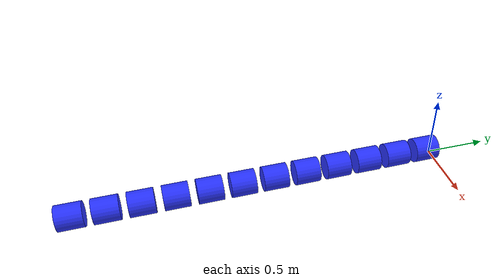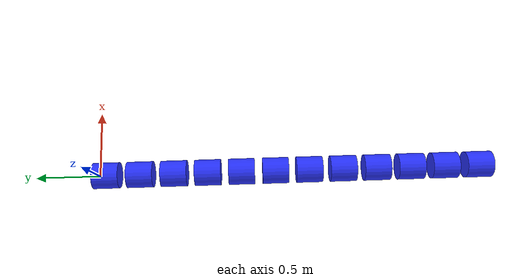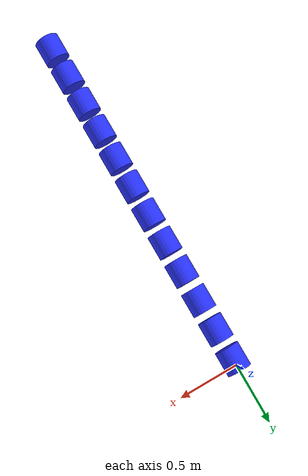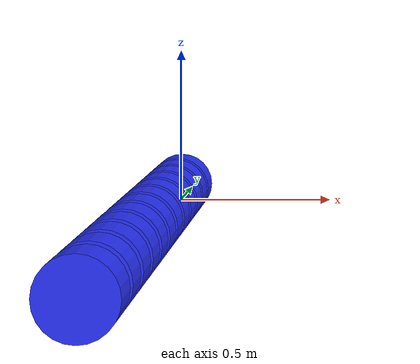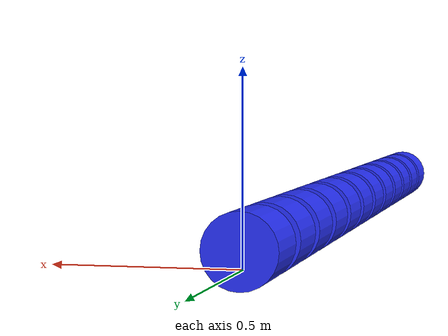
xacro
<?xml version="1.0"?>
<robot xmlns:xacro="http://www.ros.org/wiki/xacro" name="snake">

<xacro:property name="M_PI" value="3.14"/>
<xacro:property name="body_l" value="0.2"/>
<xacro:property name="body_r" value="0.1"/>
<xacro:property name="color" value="40 50 255 100"/>
<xacro:property name="mass" value="1"/>
<xacro:property name="IX" value="0.01"/>
<xacro:property name="IY" value="0.01"/>
<xacro:property name="IZ" value="0.01"/>

	<!--basic xyz-->
	<link name="link0"/>

	<joint name="joint0" type="fixed">
		<axis xyz="1 0 0"/>
		<parent link="link0"/>
		<child link="link1"/>
		<origin rpy="${0.5*M_PI} 0 0" xyz="0 ${0.5*body_l} ${0.5*body_r}"/>
	</joint>

<xacro:macro name="model" params="name_link name_joint r_x r_y after_link I1 I2">
	<link name="${name_link}" >
		<visual>
			<origin rpy="0 0 0" xyz="0 0 ${0.8*body_l}"/>
			<geometry>
				<cylinder length="${body_l}" radius="${body_r}"/>
			</geometry>
			<material name="xwy">
				<color rgba="${color}"/>
			</material>
		</visual>
		<collision>
			<origin rpy="0 0 0" xyz="0 0 ${0.8*body_l}"/>
			<geometry>
				<cylinder length="${body_l}" radius="${body_r}"/>
			</geometry>
		</collision>
		<inertial>
			<origin rpy="0 0 0" xyz="0 0 ${0.8*body_l}"/>
			<mass value="${mass}"/>
			<inertia ixx="${I1}" ixy="0.0" ixz="0.0" iyy="${I2}" iyz="0.0" izz="${IZ}"/>
		</inertial>
	</link>

	<gazebo reference="${name_link}">
		<material>Gazebo/Blue</material>
	</gazebo>

	<joint name="${name_joint}" type="revolute">
		<axis xyz="${r_x} ${r_y} 0"/>
		<limit effort="1000" lower="-1.0" upper="1.0" velocity="30"/>
		<parent link="${name_link}"/>
		<child link="${after_link}"/>
		<origin rpy="0 0 0" xyz="0 0 ${1.3*body_l}"/>
	</joint>

	<transmission name="${name_link}_tran">
		<type>transmission_interface/SimpleTransmission</type>
		<joint name="${name_joint}">
			<hardwareInterface>EffortJointInterface</hardwareInterface>
		</joint>
		<actuator name="${name_joint}_motor">
			<hardwareInterface>EffortJointInterface</hardwareInterface>
			<mechanicalReduction>1</mechanicalReduction>
		</actuator>
	</transmission>

	<gazebo>
		<plugin name="gazebo_ros_control" filename="libgazebo_ros_control.so">
			<robotNamespace>/snake</robotNamespace>
		</plugin>
	</gazebo>
	<gazebo>
		  <plugin name="joint_state_publisher" filename="libgazebo_ros_joint_state_publisher.so">
			  <jointName>${name_joint}</jointName>
		  </plugin>
	</gazebo>

</xacro:macro>

<xacro:model name_link="link1" name_joint="joint1" r_x="0" r_y="1" after_link="link2" I1="${IX}" I2="${IY}"/>
<xacro:model name_link="link2" name_joint="joint2" r_x="1" r_y="0" after_link="link3" I1="${IY}" I2="${IX}"/>
<xacro:model name_link="link3" name_joint="joint3" r_x="0" r_y="1" after_link="link4" I1="${IX}" I2="${IY}"/>
<xacro:model name_link="link4" name_joint="joint4" r_x="1" r_y="0" after_link="link5" I1="${IY}" I2="${IX}"/>
<xacro:model name_link="link5" name_joint="joint5" r_x="0" r_y="1" after_link="link6" I1="${IX}" I2="${IY}"/>
<xacro:model name_link="link6" name_joint="joint6" r_x="1" r_y="0" after_link="link7" I1="${IY}" I2="${IX}"/>
<xacro:model name_link="link7" name_joint="joint7" r_x="0" r_y="1" after_link="link8" I1="${IX}" I2="${IY}"/>
<xacro:model name_link="link8" name_joint="joint8" r_x="1" r_y="0" after_link="link9" I1="${IY}" I2="${IX}"/>
<xacro:model name_link="link9" name_joint="joint9" r_x="0" r_y="1" after_link="link10" I1="${IX}" I2="${IY}"/>
<xacro:model name_link="link10" name_joint="joint10" r_x="1" r_y="0" after_link="link11" I1="${IY}" I2="${IX}"/>
<xacro:model name_link="link11" name_joint="joint11" r_x="0" r_y="1" after_link="link12" I1="${IX}" I2="${IY}"/>

	<!--last model-->
	<link name="link12" >
	<visual>
		<origin rpy="0 0 0" xyz="0 0 ${0.8*body_l}"/>
		<geometry>
			<cylinder length="${body_l}" radius="${body_r}"/>
		</geometry>
		<material name="xwy">
			<color rgba="${color}"/>
		</material>
	</visual>
	<collision>
	        <origin rpy="0 0 0" xyz="0 0 ${0.8*body_l}"/>
		<geometry>
			<cylinder length="${body_l}" radius="${body_r}"/>
		</geometry>
	</collision>
	<inertial>
		<origin rpy="0 0 0" xyz="0 0 ${0.8*body_l}"/>
		<mass value="${mass}"/>
		<inertia ixx="${IY}" ixy="0.0" ixz="0.0" iyy="${IX}" iyz="0.0" izz="${IZ}"/>
	</inertial>
	</link>
	<gazebo reference="link12">
		<material>Gazebo/Blue</material>
	</gazebo>

</robot>
